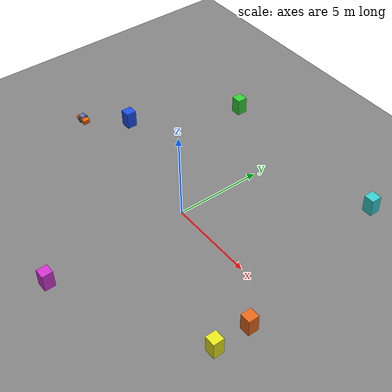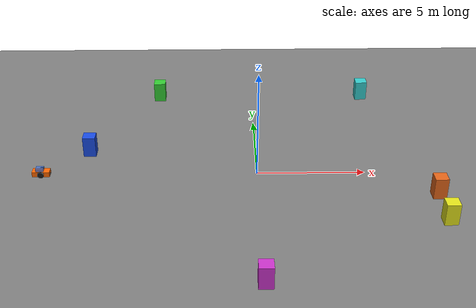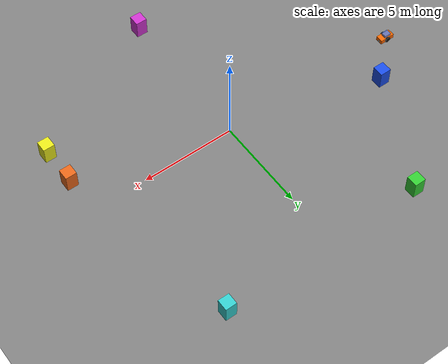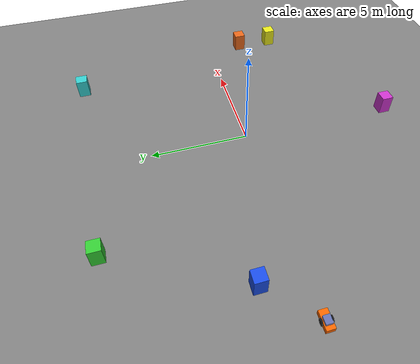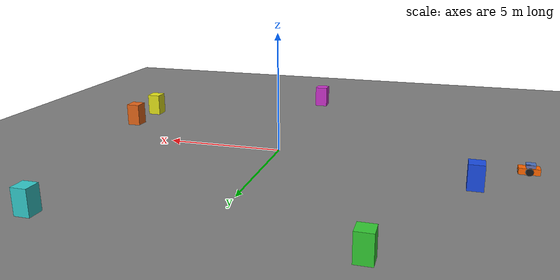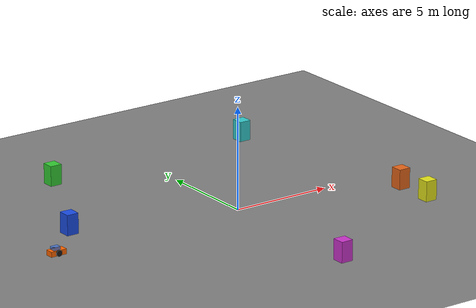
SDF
<?xml version="1.0" ?>
<sdf version="1.8">
  <world name="dynamic_obstacle_world">
    <physics name="1ms" type="dart">
      <max_step_size>0.002</max_step_size>
      <real_time_factor>1.0</real_time_factor>
    </physics>
    <plugin filename="gz-sim-physics-system"           name="gz::sim::systems::Physics"/>
    <plugin filename="gz-sim-user-commands-system"     name="gz::sim::systems::UserCommands"/>
    <plugin filename="gz-sim-scene-broadcaster-system" name="gz::sim::systems::SceneBroadcaster"/>
    <plugin filename="gz-sim-sensors-system"           name="gz::sim::systems::Sensors">
    <plugin filename="gz-sim-imu-system" name="gz::sim::systems::Imu"/>
      <render_engine>ogre2</render_engine>
    </plugin>
    <light type="directional" name="sun">
      <cast_shadows>false</cast_shadows><pose>0 0 10 0 0 0</pose>
      <diffuse>0.9 0.9 0.8 1</diffuse><specular>0.4 0.4 0.4 1</specular>
      <direction>-0.5 0.1 -0.9</direction>
    </light>
    <scene><ambient>0.4 0.4 0.4 1</ambient><background>0.6 0.7 0.9 1</background><shadows>false</shadows></scene>

    <model name="ground_plane"><static>true</static>
      <link name="link">
        <collision name="c"><geometry><plane><normal>0 0 1</normal><size>100 100</size></plane></geometry></collision>
        <visual name="v"><geometry><plane><normal>0 0 1</normal><size>100 100</size></plane></geometry>
          <material><ambient>0.5 0.5 0.5 1</ambient></material></visual>
      </link>
    </model>

    <!-- ORANGE DIFF-DRIVE CAR starting at (-10, 0) -->
    <model name="super_car">
      <pose>-10 0 0.15 0 0 0</pose>
      <static>false</static>
      <link name="base_link">
        <inertial>
          <mass>20.0</mass>
          <inertia><ixx>1.0</ixx><iyy>3.0</iyy><izz>3.5</izz><ixy>0</ixy><ixz>0</ixz><iyz>0</iyz></inertia>
        </inertial>
        <collision name="body_col">
          <geometry><box><size>0.8 0.4 0.25</size></box></geometry>
        </collision>
        <visual name="body_vis">
          <geometry><box><size>0.8 0.4 0.25</size></box></geometry>
          <material><ambient>1.0 0.4 0.0 1</ambient><diffuse>1.0 0.4 0.0 1</diffuse></material>
        </visual>
        <visual name="cabin_vis">
          <pose>-0.05 0 0.2 0 0 0</pose>
          <geometry><box><size>0.35 0.3 0.15</size></box></geometry>
          <material><ambient>0.3 0.5 0.9 0.8</ambient></material>
        </visual>
        <sensor name="lidar" type="gpu_lidar">
          <pose>0 0 0.3 0 0 0</pose>
          <always_on>true</always_on>
          <update_rate>10</update_rate>
          <visualize>false</visualize>
          <topic>/scan</topic>
          <gz:frame_id>lidar_link</gz:frame_id>
          <lidar>
            <scan>
              <horizontal>
                <samples>360</samples><resolution>1</resolution>
                <min_angle>-3.14159</min_angle><max_angle>3.14159</max_angle>
              </horizontal>
              <vertical><samples>1</samples><min_angle>0</min_angle><max_angle>0</max_angle></vertical>
            </scan>
            <range><min>0.2</min><max>12.0</max><resolution>0.01</resolution></range>
          </lidar>
        </sensor>
        <sensor name="imu_sensor" type="imu">
          <always_on>1</always_on>
          <update_rate>30</update_rate>
          <topic>/imu/data_raw</topic>
          <gz:frame_id>imu_link</gz:frame_id>
        </sensor>
      </link>

      <link name="left_wheel">
        <pose>0 0.22 0 0 0 0</pose>
        <inertial><mass>1.0</mass><inertia><ixx>0.01</ixx><iyy>0.02</iyy><izz>0.01</izz></inertia></inertial>
        <collision name="c"><pose>0 0 0 1.5708 0 0</pose>
          <geometry><cylinder><radius>0.15</radius><length>0.06</length></cylinder></geometry>
        </collision>
        <visual name="v"><pose>0 0 0 1.5708 0 0</pose>
          <geometry><cylinder><radius>0.15</radius><length>0.06</length></cylinder></geometry>
          <material><ambient>0.1 0.1 0.1 1</ambient></material>
        </visual>
      </link>
      <joint name="left_wheel_joint" type="revolute">
        <parent>base_link</parent><child>left_wheel</child>
        <axis><xyz>0 1 0</xyz><limit><lower>-1e16</lower><upper>1e16</upper></limit></axis>
      </joint>

      <link name="right_wheel">
        <pose>0 -0.22 0 0 0 0</pose>
        <inertial><mass>1.0</mass><inertia><ixx>0.01</ixx><iyy>0.02</iyy><izz>0.01</izz></inertia></inertial>
        <collision name="c"><pose>0 0 0 1.5708 0 0</pose>
          <geometry><cylinder><radius>0.15</radius><length>0.06</length></cylinder></geometry>
        </collision>
        <visual name="v"><pose>0 0 0 1.5708 0 0</pose>
          <geometry><cylinder><radius>0.15</radius><length>0.06</length></cylinder></geometry>
          <material><ambient>0.1 0.1 0.1 1</ambient></material>
        </visual>
      </link>
      <joint name="right_wheel_joint" type="revolute">
        <parent>base_link</parent><child>right_wheel</child>
        <axis><xyz>0 1 0</xyz><limit><lower>-1e16</lower><upper>1e16</upper></limit></axis>
      </joint>

      <link name="caster">
        <pose>0.35 0 -0.05 0 0 0</pose>
        <inertial><mass>0.5</mass><inertia><ixx>0.001</ixx><iyy>0.001</iyy><izz>0.001</izz></inertia></inertial>
        <collision name="c"><geometry><sphere><radius>0.08</radius></sphere></geometry>
        </collision>
        <visual name="v"><geometry><sphere><radius>0.08</radius></sphere></geometry>
          <material><ambient>0.5 0.5 0.5 1</ambient></material>
        </visual>
      </link>
      <joint name="caster_joint" type="fixed">
        <parent>base_link</parent><child>caster</child>
      </joint>

      <plugin filename="gz-sim-diff-drive-system" name="gz::sim::systems::DiffDrive">
        <left_joint>left_wheel_joint</left_joint>
        <right_joint>right_wheel_joint</right_joint>
        <wheel_separation>0.44</wheel_separation>
        <wheel_radius>0.15</wheel_radius>
        <odom_publish_frequency>30</odom_publish_frequency>
        <max_linear_acceleration>3</max_linear_acceleration>
        <min_linear_acceleration>-3</min_linear_acceleration>
        <max_angular_acceleration>4</max_angular_acceleration>
        <topic>/cmd_vel</topic>
        <odom_topic>/odom</odom_topic>
        <frame_id>odom</frame_id>
        <child_frame_id>base_link</child_frame_id>
        <tf_topic>/tf</tf_topic>
      </plugin>
      <plugin filename="gz-sim-joint-state-publisher-system" name="gz::sim::systems::JointStatePublisher">
        <topic>/joint_states</topic>
      </plugin>
    </model>

    <!-- 6 OBSTACLES: 3 move N-S, 3 move E-W, on fixed Y/X lanes - never collide -->
    <!-- N-S movers: fixed X, move along Y -->
    <model name="obs_ns1"><pose>-5 8 0.5 0 0 0</pose><static>false</static>
      <link name="link">
        <inertial><mass>10.0</mass><inertia><ixx>1</ixx><iyy>1</iyy><izz>1</izz></inertia></inertial>
        <collision name="c"><geometry><box><size>0.6 0.6 1.0</size></box></geometry></collision>
        <visual name="v"><geometry><box><size>0.6 0.6 1.0</size></box></geometry>
          <material><ambient>0.2 0.8 0.2 1</ambient><diffuse>0.2 0.8 0.2 1</diffuse></material></visual>
      </link>
      <plugin filename="gz-sim-trajectory-follower-system" name="gz::sim::systems::TrajectoryFollower">
        <link_name>link</link_name>
        <loop>true</loop>
        <force>100</force>
        <torque>100</torque>
        <waypoints>
          <waypoint>-5 8</waypoint>
          <waypoint>-5 -8</waypoint>
        </waypoints>
      </plugin>
    </model>

    <model name="obs_ns2"><pose>0 -8 0.5 0 0 0</pose><static>false</static>
      <link name="link">
        <inertial><mass>10.0</mass><inertia><ixx>1</ixx><iyy>1</iyy><izz>1</izz></inertia></inertial>
        <collision name="c"><geometry><box><size>0.6 0.6 1.0</size></box></geometry></collision>
        <visual name="v"><geometry><box><size>0.6 0.6 1.0</size></box></geometry>
          <material><ambient>0.8 0.2 0.8 1</ambient><diffuse>0.8 0.2 0.8 1</diffuse></material></visual>
      </link>
      <plugin filename="gz-sim-trajectory-follower-system" name="gz::sim::systems::TrajectoryFollower">
        <link_name>link</link_name>
        <loop>true</loop>
        <force>100</force>
        <torque>100</torque>
        <waypoints>
          <waypoint>0 -8</waypoint>
          <waypoint>0 8</waypoint>
        </waypoints>
      </plugin>
    </model>

    <model name="obs_ns3"><pose>6 8 0.5 0 0 0</pose><static>false</static>
      <link name="link">
        <inertial><mass>10.0</mass><inertia><ixx>1</ixx><iyy>1</iyy><izz>1</izz></inertia></inertial>
        <collision name="c"><geometry><box><size>0.6 0.6 1.0</size></box></geometry></collision>
        <visual name="v"><geometry><box><size>0.6 0.6 1.0</size></box></geometry>
          <material><ambient>0.2 0.8 0.8 1</ambient><diffuse>0.2 0.8 0.8 1</diffuse></material></visual>
      </link>
      <plugin filename="gz-sim-trajectory-follower-system" name="gz::sim::systems::TrajectoryFollower">
        <link_name>link</link_name>
        <loop>true</loop>
        <force>100</force>
        <torque>100</torque>
        <waypoints>
          <waypoint>6 8</waypoint>
          <waypoint>6 -8</waypoint>
        </waypoints>
      </plugin>
    </model>

    <model name="obs_ew1"><pose>8 -4 0.5 0 0 0</pose><static>false</static>
      <link name="link">
        <inertial><mass>10.0</mass><inertia><ixx>1</ixx><iyy>1</iyy><izz>1</izz></inertia></inertial>
        <collision name="c"><geometry><box><size>0.6 0.6 1.0</size></box></geometry></collision>
        <visual name="v"><geometry><box><size>0.6 0.6 1.0</size></box></geometry>
          <material><ambient>0.9 0.9 0.1 1</ambient><diffuse>0.9 0.9 0.1 1</diffuse></material></visual>
      </link>
      <plugin filename="gz-sim-trajectory-follower-system" name="gz::sim::systems::TrajectoryFollower">
        <link_name>link</link_name>
        <loop>true</loop>
        <force>100</force>
        <torque>100</torque>
        <waypoints>
          <waypoint>8 -4</waypoint>
          <waypoint>-8 -4</waypoint>
        </waypoints>
      </plugin>
    </model>

    <model name="obs_ew2"><pose>-8 2 0.5 0 0 0</pose><static>false</static>
      <link name="link">
        <inertial><mass>10.0</mass><inertia><ixx>1</ixx><iyy>1</iyy><izz>1</izz></inertia></inertial>
        <collision name="c"><geometry><box><size>0.6 0.6 1.0</size></box></geometry></collision>
        <visual name="v"><geometry><box><size>0.6 0.6 1.0</size></box></geometry>
          <material><ambient>0.1 0.3 0.9 1</ambient><diffuse>0.1 0.3 0.9 1</diffuse></material></visual>
      </link>
      <plugin filename="gz-sim-trajectory-follower-system" name="gz::sim::systems::TrajectoryFollower">
        <link_name>link</link_name>
        <loop>true</loop>
        <force>100</force>
        <torque>100</torque>
        <waypoints>
          <waypoint>-8 2</waypoint>
          <waypoint>8 2</waypoint>
        </waypoints>
      </plugin>
    </model>

    <model name="obs_ew3"><pose>8 -2 0.5 0 0 0</pose><static>false</static>
      <link name="link">
        <inertial><mass>10.0</mass><inertia><ixx>1</ixx><iyy>1</iyy><izz>1</izz></inertia></inertial>
        <collision name="c"><geometry><box><size>0.6 0.6 1.0</size></box></geometry></collision>
        <visual name="v"><geometry><box><size>0.6 0.6 1.0</size></box></geometry>
          <material><ambient>0.9 0.4 0.1 1</ambient><diffuse>0.9 0.4 0.1 1</diffuse></material></visual>
      </link>
      <plugin filename="gz-sim-trajectory-follower-system" name="gz::sim::systems::TrajectoryFollower">
        <link_name>link</link_name>
        <loop>true</loop>
        <force>100</force>
        <torque>100</torque>
        <waypoints>
          <waypoint>8 -2</waypoint>
          <waypoint>-8 -2</waypoint>
        </waypoints>
      </plugin>
    </model>

  </world>
</sdf>
